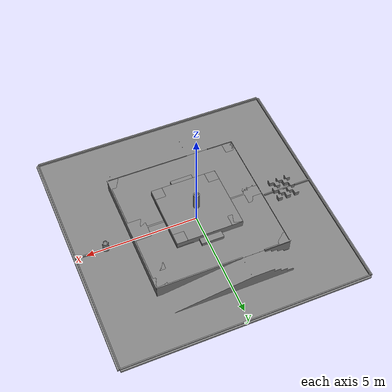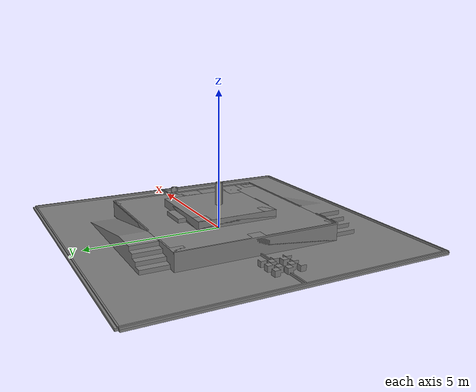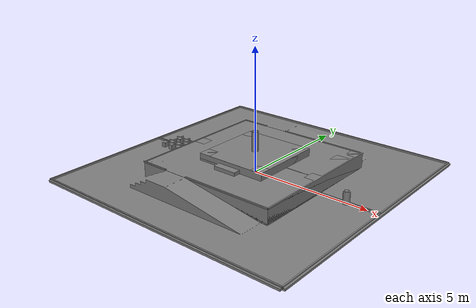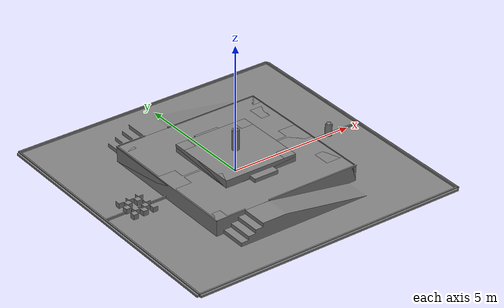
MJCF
<mujoco model="robocon_ground">
  <!-- Converted from Gazebo SDF model: robocon_ground -->
  <!-- Visual mesh: meshes/Untitled.dae -> robocon_ground.obj (with .mtl) -->

  <compiler meshdir="." angle="radian"/>

  <asset>
    <mesh name="robocon_visual" file="robocon_ground.obj"/>
  </asset>

  <worldbody>
    <light pos="0 0 6" dir="0 0 -1" directional="true"/>

    <body name="robocon_ground" pos="0 0 0">
      <!-- 视觉：整个场地的彩色网格 -->
      <geom name="visual_field" type="mesh" mesh="robocon_visual" contype="0" conaffinity="0" group="2"/>

      <!-- ========== 碰撞体（与 Gazebo SDF 一致） ========== -->

      <!-- 1. 红方半场地面 -->
      <geom name="collision_ground_red" type="box" pos="0 2.75 -0.01" size="5.5 2.75 0.01"/>

      <!-- 2. 蓝方半场地面 -->
      <geom name="collision_ground_blue" type="box" pos="0 -2.75 -0.01" size="5.5 2.75 0.01"/>

      <!-- 3. 中央隔板 11 x 0.05 x 0.08 -->
      <geom name="collision_center_divider" type="box" pos="0 0 0.04" size="5.5 0.025 0.04"/>

      <!-- 4. 前围栏 (Y-) -->
      <geom name="collision_wall_front" type="box" pos="0 -5.5 0.04" size="5.5 0.025 0.04"/>

      <!-- 5. 后围栏 (Y+) -->
      <geom name="collision_wall_back" type="box" pos="0 5.5 0.04" size="5.5 0.025 0.04"/>

      <!-- 6. 左围栏 (X-) -->
      <geom name="collision_wall_left" type="box" pos="-5.5 0 0.04" size="0.025 5.5 0.04"/>

      <!-- 7. 右围栏 (X+) -->
      <geom name="collision_wall_right" type="box" pos="5.5 0 0.04" size="0.025 5.5 0.04"/>

      <!-- 8. 五色石基座 圆柱 r=0.135, h=0.5 -->
      <geom name="collision_stone_base" type="cylinder" pos="0 0 0.25" size="0.135 0.25"/>

      <!-- 9. L1 层高台 6 x 6, 顶面高 0.6 -->
      <geom name="collision_l1" type="box" pos="0 0 0.301" size="3 3 0.301"/>

      <!-- 10. L2 层高台 3 x 3, 顶面高 0.9 -->
      <geom name="collision_l2" type="box" pos="0 0 0.7515" size="1.5 1.5 0.1495"/>
    </body>
  </worldbody>
</mujoco>
